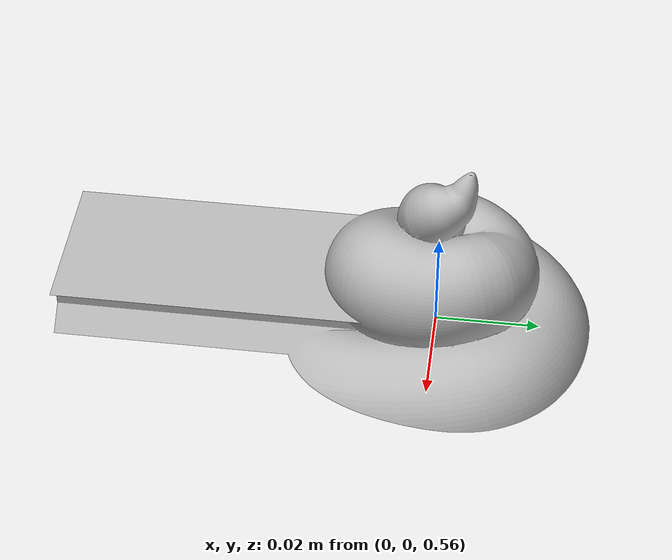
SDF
<?xml version='1.0'?>
<sdf version='1.6'>
<model name ='poop_upper'>
  <pose>0 0 0.5 0 0 0</pose>
    <link name='upper_link'>
      <inertial>
        <mass>0.02</mass>
        <inertia>
          <ixx>147.491791</ixx>
          <ixy>-4.949071</ixy>
          <ixz>-0.258245</ixz>
          <iyy>10.094223</iyy>
          <iyz>-0.634677</iyz>
          <izz>153.751083</izz>
        </inertia>
      </inertial>
      <collision name='upper_colision'>
        <geometry>
          <mesh>
            <uri>model://poop_upper/poop1.dae</uri>
          </mesh>
        </geometry>
      </collision>
      <visual name='upper_visual'>
        <geometry>
          <mesh>
            <uri>model://poop_upper/poop1.dae</uri>
          </mesh>
        </geometry>
      </visual>
    </link>
  </model>
</sdf>
